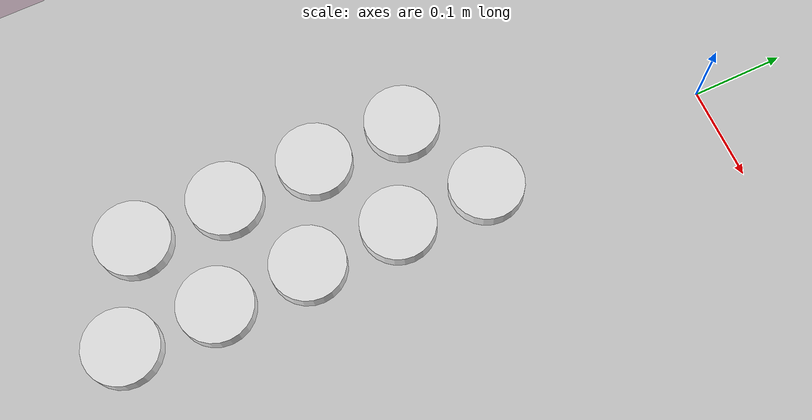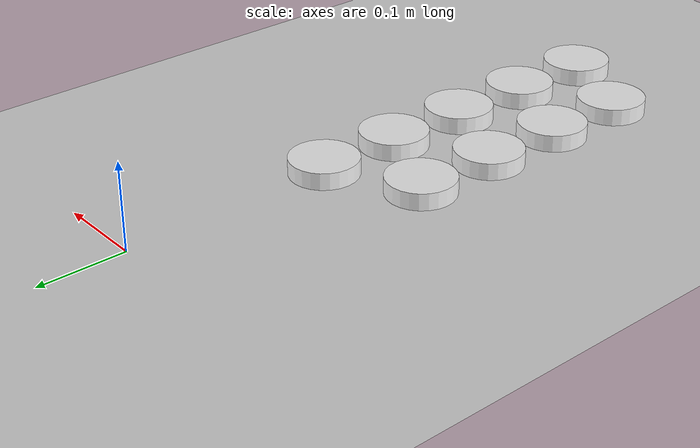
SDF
<sdf version="1.6">
 <world name="default">
  <model name="ground_plane">
   <static>1</static>
   <link name="link">
    <collision name="collision">
     <geometry><plane><normal>0 0 1</normal><size>100 100</size></plane></geometry>
     <surface>
      <contact><collide_bitmask>65535</collide_bitmask></contact>
      <friction><ode><mu>100</mu><mu2>50</mu2></ode></friction>
     </surface>
    </collision>
    <visual name="visual">
     <cast_shadows>0</cast_shadows>
     <geometry><plane><normal>0 0 1</normal><size>100 100</size></plane></geometry>
     <material>
      <script><uri>file://media/materials/scripts/gazebo.material</uri><name>Gazebo/Grey</name></script>
     </material>
    </visual>
   </link>
  </model>
  <model name="white_piece">
   <link name="link">
    <inertial>
     <mass>0.2</mass>
     <inertia>
      <ixx>8.667e-05</ixx>
      <ixy>0</ixy>
      <ixz>0</ixz>
      <iyy>8.667e-05</iyy>
      <iyz>0</iyz>
      <izz>0.00016</izz>
     </inertia>
    </inertial>
    <visual name="visual">
     <geometry><cylinder><radius>0.04</radius><length>0.02</length></cylinder></geometry>
     <material>
      <script><name>Gazebo/White</name><uri>file://media/materials/scripts/gazebo.material</uri></script>
      <shader type="vertex"><normal_map>__default__</normal_map></shader>
     </material>
    </visual>
    <collision name="collision">
     <geometry><cylinder><radius>0.04</radius><length>0.02</length></cylinder></geometry>
     <surface>
      <friction>
       <ode><mu>1</mu><mu2>1</mu2><fdir1>0 0 0</fdir1><slip1>0</slip1><slip2>0</slip2></ode>
       <torsional>
        <coefficient>1</coefficient>
        <patch_radius>0</patch_radius>
        <surface_radius>0</surface_radius>
        <use_patch_radius>1</use_patch_radius>
        <ode><slip>0</slip></ode>
       </torsional>
      </friction>
      <bounce><restitution_coefficient>0</restitution_coefficient><threshold>1e+06</threshold></bounce>
      <contact>
       <collide_without_contact>0</collide_without_contact>
       <collide_without_contact_bitmask>1</collide_without_contact_bitmask>
       <collide_bitmask>1</collide_bitmask>
       <ode>
        <soft_cfm>0</soft_cfm>
        <soft_erp>0.2</soft_erp>
        <kp>1e+13</kp>
        <kd>1</kd>
        <max_vel>1</max_vel>
        <min_depth>0</min_depth>
       </ode>
       <bullet>
        <split_impulse>1</split_impulse>
        <split_impulse_penetration_threshold>-0.01</split_impulse_penetration_threshold>
        <soft_cfm>0</soft_cfm>
        <soft_erp>0.2</soft_erp>
        <kp>1e+13</kp>
        <kd>1</kd>
       </bullet>
      </contact>
     </surface>
    </collision>
   </link>
   <static>0</static>
   <pose>0 -0.25 0.009996 4.8e-05 5.4e-05 0</pose>
  </model>
  <model name="white_piece_0">
   <link name="link">
    <inertial>
     <mass>0.2</mass>
     <inertia>
      <ixx>8.667e-05</ixx>
      <ixy>0</ixy>
      <ixz>0</ixz>
      <iyy>8.667e-05</iyy>
      <iyz>0</iyz>
      <izz>0.00016</izz>
     </inertia>
    </inertial>
    <visual name="visual">
     <geometry><cylinder><radius>0.04</radius><length>0.02</length></cylinder></geometry>
     <material>
      <script><name>Gazebo/White</name><uri>file://media/materials/scripts/gazebo.material</uri></script>
      <shader type="vertex"><normal_map>__default__</normal_map></shader>
     </material>
    </visual>
    <collision name="collision">
     <geometry><cylinder><radius>0.04</radius><length>0.02</length></cylinder></geometry>
     <surface>
      <friction>
       <ode><mu>1</mu><mu2>1</mu2><fdir1>0 0 0</fdir1><slip1>0</slip1><slip2>0</slip2></ode>
       <torsional>
        <coefficient>1</coefficient>
        <patch_radius>0</patch_radius>
        <surface_radius>0</surface_radius>
        <use_patch_radius>1</use_patch_radius>
        <ode><slip>0</slip></ode>
       </torsional>
      </friction>
      <bounce><restitution_coefficient>0</restitution_coefficient><threshold>1e+06</threshold></bounce>
      <contact>
       <collide_without_contact>0</collide_without_contact>
       <collide_without_contact_bitmask>1</collide_without_contact_bitmask>
       <collide_bitmask>1</collide_bitmask>
       <ode>
        <soft_cfm>0</soft_cfm>
        <soft_erp>0.2</soft_erp>
        <kp>1e+13</kp>
        <kd>1</kd>
        <max_vel>1</max_vel>
        <min_depth>0</min_depth>
       </ode>
       <bullet>
        <split_impulse>1</split_impulse>
        <split_impulse_penetration_threshold>-0.01</split_impulse_penetration_threshold>
        <soft_cfm>0</soft_cfm>
        <soft_erp>0.2</soft_erp>
        <kp>1e+13</kp>
        <kd>1</kd>
       </bullet>
      </contact>
     </surface>
    </collision>
   </link>
   <static>0</static>
   <pose>0 -0.35 0.01 0 -0 2e-06</pose>
  </model>
  <model name="white_piece_1">
   <link name="link">
    <inertial>
     <mass>0.2</mass>
     <inertia>
      <ixx>8.667e-05</ixx>
      <ixy>0</ixy>
      <ixz>0</ixz>
      <iyy>8.667e-05</iyy>
      <iyz>0</iyz>
      <izz>0.00016</izz>
     </inertia>
    </inertial>
    <visual name="visual">
     <geometry><cylinder><radius>0.04</radius><length>0.02</length></cylinder></geometry>
     <material>
      <script><name>Gazebo/White</name><uri>file://media/materials/scripts/gazebo.material</uri></script>
      <shader type="vertex"><normal_map>__default__</normal_map></shader>
     </material>
    </visual>
    <collision name="collision">
     <geometry><cylinder><radius>0.04</radius><length>0.02</length></cylinder></geometry>
     <surface>
      <friction>
       <ode><mu>1</mu><mu2>1</mu2><fdir1>0 0 0</fdir1><slip1>0</slip1><slip2>0</slip2></ode>
       <torsional>
        <coefficient>1</coefficient>
        <patch_radius>0</patch_radius>
        <surface_radius>0</surface_radius>
        <use_patch_radius>1</use_patch_radius>
        <ode><slip>0</slip></ode>
       </torsional>
      </friction>
      <bounce><restitution_coefficient>0</restitution_coefficient><threshold>1e+06</threshold></bounce>
      <contact>
       <collide_without_contact>0</collide_without_contact>
       <collide_without_contact_bitmask>1</collide_without_contact_bitmask>
       <collide_bitmask>1</collide_bitmask>
       <ode>
        <soft_cfm>0</soft_cfm>
        <soft_erp>0.2</soft_erp>
        <kp>1e+13</kp>
        <kd>1</kd>
        <max_vel>1</max_vel>
        <min_depth>0</min_depth>
       </ode>
       <bullet>
        <split_impulse>1</split_impulse>
        <split_impulse_penetration_threshold>-0.01</split_impulse_penetration_threshold>
        <soft_cfm>0</soft_cfm>
        <soft_erp>0.2</soft_erp>
        <kp>1e+13</kp>
        <kd>1</kd>
       </bullet>
      </contact>
     </surface>
    </collision>
   </link>
   <static>0</static>
   <pose>0 -0.45 0.009996 -8e-06 -8e-06 2e-06</pose>
  </model>
  <model name="white_piece_2">
   <link name="link">
    <inertial>
     <mass>0.2</mass>
     <inertia>
      <ixx>8.667e-05</ixx>
      <ixy>0</ixy>
      <ixz>0</ixz>
      <iyy>8.667e-05</iyy>
      <iyz>0</iyz>
      <izz>0.00016</izz>
     </inertia>
    </inertial>
    <visual name="visual">
     <geometry><cylinder><radius>0.04</radius><length>0.02</length></cylinder></geometry>
     <material>
      <script><name>Gazebo/White</name><uri>file://media/materials/scripts/gazebo.material</uri></script>
      <shader type="vertex"><normal_map>__default__</normal_map></shader>
     </material>
    </visual>
    <collision name="collision">
     <geometry><cylinder><radius>0.04</radius><length>0.02</length></cylinder></geometry>
     <surface>
      <friction>
       <ode><mu>1</mu><mu2>1</mu2><fdir1>0 0 0</fdir1><slip1>0</slip1><slip2>0</slip2></ode>
       <torsional>
        <coefficient>1</coefficient>
        <patch_radius>0</patch_radius>
        <surface_radius>0</surface_radius>
        <use_patch_radius>1</use_patch_radius>
        <ode><slip>0</slip></ode>
       </torsional>
      </friction>
      <bounce><restitution_coefficient>0</restitution_coefficient><threshold>1e+06</threshold></bounce>
      <contact>
       <collide_without_contact>0</collide_without_contact>
       <collide_without_contact_bitmask>1</collide_without_contact_bitmask>
       <collide_bitmask>1</collide_bitmask>
       <ode>
        <soft_cfm>0</soft_cfm>
        <soft_erp>0.2</soft_erp>
        <kp>1e+13</kp>
        <kd>1</kd>
        <max_vel>1</max_vel>
        <min_depth>0</min_depth>
       </ode>
       <bullet>
        <split_impulse>1</split_impulse>
        <split_impulse_penetration_threshold>-0.01</split_impulse_penetration_threshold>
        <soft_cfm>0</soft_cfm>
        <soft_erp>0.2</soft_erp>
        <kp>1e+13</kp>
        <kd>1</kd>
       </bullet>
      </contact>
     </surface>
    </collision>
   </link>
   <static>0</static>
   <pose>0 -0.55 0.009996 -6.4e-05 -8.2e-05 -2e-06</pose>
  </model>
  <model name="white_piece_3">
   <link name="link">
    <inertial>
     <mass>0.2</mass>
     <inertia>
      <ixx>8.667e-05</ixx>
      <ixy>0</ixy>
      <ixz>0</ixz>
      <iyy>8.667e-05</iyy>
      <iyz>0</iyz>
      <izz>0.00016</izz>
     </inertia>
    </inertial>
    <visual name="visual">
     <geometry><cylinder><radius>0.04</radius><length>0.02</length></cylinder></geometry>
     <material>
      <script><name>Gazebo/White</name><uri>file://media/materials/scripts/gazebo.material</uri></script>
      <shader type="vertex"><normal_map>__default__</normal_map></shader>
     </material>
    </visual>
    <collision name="collision">
     <geometry><cylinder><radius>0.04</radius><length>0.02</length></cylinder></geometry>
     <surface>
      <friction>
       <ode><mu>1</mu><mu2>1</mu2><fdir1>0 0 0</fdir1><slip1>0</slip1><slip2>0</slip2></ode>
       <torsional>
        <coefficient>1</coefficient>
        <patch_radius>0</patch_radius>
        <surface_radius>0</surface_radius>
        <use_patch_radius>1</use_patch_radius>
        <ode><slip>0</slip></ode>
       </torsional>
      </friction>
      <bounce><restitution_coefficient>0</restitution_coefficient><threshold>1e+06</threshold></bounce>
      <contact>
       <collide_without_contact>0</collide_without_contact>
       <collide_without_contact_bitmask>1</collide_without_contact_bitmask>
       <collide_bitmask>1</collide_bitmask>
       <ode>
        <soft_cfm>0</soft_cfm>
        <soft_erp>0.2</soft_erp>
        <kp>1e+13</kp>
        <kd>1</kd>
        <max_vel>1</max_vel>
        <min_depth>0</min_depth>
       </ode>
       <bullet>
        <split_impulse>1</split_impulse>
        <split_impulse_penetration_threshold>-0.01</split_impulse_penetration_threshold>
        <soft_cfm>0</soft_cfm>
        <soft_erp>0.2</soft_erp>
        <kp>1e+13</kp>
        <kd>1</kd>
       </bullet>
      </contact>
     </surface>
    </collision>
   </link>
   <static>0</static>
   <pose>0 -0.65 0.009997 8e-05 8e-05 4e-06</pose>
  </model>
  <model name="white_piece_4">
   <link name="link">
    <inertial>
     <mass>0.2</mass>
     <inertia>
      <ixx>8.667e-05</ixx>
      <ixy>0</ixy>
      <ixz>0</ixz>
      <iyy>8.667e-05</iyy>
      <iyz>0</iyz>
      <izz>0.00016</izz>
     </inertia>
    </inertial>
    <visual name="visual">
     <geometry><cylinder><radius>0.04</radius><length>0.02</length></cylinder></geometry>
     <material>
      <script><name>Gazebo/White</name><uri>file://media/materials/scripts/gazebo.material</uri></script>
      <shader type="vertex"><normal_map>__default__</normal_map></shader>
     </material>
    </visual>
    <collision name="collision">
     <geometry><cylinder><radius>0.04</radius><length>0.02</length></cylinder></geometry>
     <surface>
      <friction>
       <ode><mu>1</mu><mu2>1</mu2><fdir1>0 0 0</fdir1><slip1>0</slip1><slip2>0</slip2></ode>
       <torsional>
        <coefficient>1</coefficient>
        <patch_radius>0</patch_radius>
        <surface_radius>0</surface_radius>
        <use_patch_radius>1</use_patch_radius>
        <ode><slip>0</slip></ode>
       </torsional>
      </friction>
      <bounce><restitution_coefficient>0</restitution_coefficient><threshold>1e+06</threshold></bounce>
      <contact>
       <collide_without_contact>0</collide_without_contact>
       <collide_without_contact_bitmask>1</collide_without_contact_bitmask>
       <collide_bitmask>1</collide_bitmask>
       <ode>
        <soft_cfm>0</soft_cfm>
        <soft_erp>0.2</soft_erp>
        <kp>1e+13</kp>
        <kd>1</kd>
        <max_vel>1</max_vel>
        <min_depth>0</min_depth>
       </ode>
       <bullet>
        <split_impulse>1</split_impulse>
        <split_impulse_penetration_threshold>-0.01</split_impulse_penetration_threshold>
        <soft_cfm>0</soft_cfm>
        <soft_erp>0.2</soft_erp>
        <kp>1e+13</kp>
        <kd>1</kd>
       </bullet>
      </contact>
     </surface>
    </collision>
   </link>
   <static>0</static>
   <pose>-0.1 -0.5 0.009994 -3.6e-05 -3.8e-05 2e-06</pose>
  </model>
  <model name="white_piece_5">
   <link name="link">
    <inertial>
     <mass>0.2</mass>
     <inertia>
      <ixx>8.667e-05</ixx>
      <ixy>0</ixy>
      <ixz>0</ixz>
      <iyy>8.667e-05</iyy>
      <iyz>0</iyz>
      <izz>0.00016</izz>
     </inertia>
    </inertial>
    <visual name="visual">
     <geometry><cylinder><radius>0.04</radius><length>0.02</length></cylinder></geometry>
     <material>
      <script><name>Gazebo/White</name><uri>file://media/materials/scripts/gazebo.material</uri></script>
      <shader type="vertex"><normal_map>__default__</normal_map></shader>
     </material>
    </visual>
    <collision name="collision">
     <geometry><cylinder><radius>0.04</radius><length>0.02</length></cylinder></geometry>
     <surface>
      <friction>
       <ode><mu>1</mu><mu2>1</mu2><fdir1>0 0 0</fdir1><slip1>0</slip1><slip2>0</slip2></ode>
       <torsional>
        <coefficient>1</coefficient>
        <patch_radius>0</patch_radius>
        <surface_radius>0</surface_radius>
        <use_patch_radius>1</use_patch_radius>
        <ode><slip>0</slip></ode>
       </torsional>
      </friction>
      <bounce><restitution_coefficient>0</restitution_coefficient><threshold>1e+06</threshold></bounce>
      <contact>
       <collide_without_contact>0</collide_without_contact>
       <collide_without_contact_bitmask>1</collide_without_contact_bitmask>
       <collide_bitmask>1</collide_bitmask>
       <ode>
        <soft_cfm>0</soft_cfm>
        <soft_erp>0.2</soft_erp>
        <kp>1e+13</kp>
        <kd>1</kd>
        <max_vel>1</max_vel>
        <min_depth>0</min_depth>
       </ode>
       <bullet>
        <split_impulse>1</split_impulse>
        <split_impulse_penetration_threshold>-0.01</split_impulse_penetration_threshold>
        <soft_cfm>0</soft_cfm>
        <soft_erp>0.2</soft_erp>
        <kp>1e+13</kp>
        <kd>1</kd>
       </bullet>
      </contact>
     </surface>
    </collision>
   </link>
   <static>0</static>
   <pose>-0.1 -0.6 0.01 0 -0 4e-06</pose>
  </model>
  <model name="white_piece_6">
   <link name="link">
    <inertial>
     <mass>0.2</mass>
     <inertia>
      <ixx>8.667e-05</ixx>
      <ixy>0</ixy>
      <ixz>0</ixz>
      <iyy>8.667e-05</iyy>
      <iyz>0</iyz>
      <izz>0.00016</izz>
     </inertia>
    </inertial>
    <visual name="visual">
     <geometry><cylinder><radius>0.04</radius><length>0.02</length></cylinder></geometry>
     <material>
      <script><name>Gazebo/White</name><uri>file://media/materials/scripts/gazebo.material</uri></script>
      <shader type="vertex"><normal_map>__default__</normal_map></shader>
     </material>
    </visual>
    <collision name="collision">
     <geometry><cylinder><radius>0.04</radius><length>0.02</length></cylinder></geometry>
     <surface>
      <friction>
       <ode><mu>1</mu><mu2>1</mu2><fdir1>0 0 0</fdir1><slip1>0</slip1><slip2>0</slip2></ode>
       <torsional>
        <coefficient>1</coefficient>
        <patch_radius>0</patch_radius>
        <surface_radius>0</surface_radius>
        <use_patch_radius>1</use_patch_radius>
        <ode><slip>0</slip></ode>
       </torsional>
      </friction>
      <bounce><restitution_coefficient>0</restitution_coefficient><threshold>1e+06</threshold></bounce>
      <contact>
       <collide_without_contact>0</collide_without_contact>
       <collide_without_contact_bitmask>1</collide_without_contact_bitmask>
       <collide_bitmask>1</collide_bitmask>
       <ode>
        <soft_cfm>0</soft_cfm>
        <soft_erp>0.2</soft_erp>
        <kp>1e+13</kp>
        <kd>1</kd>
        <max_vel>1</max_vel>
        <min_depth>0</min_depth>
       </ode>
       <bullet>
        <split_impulse>1</split_impulse>
        <split_impulse_penetration_threshold>-0.01</split_impulse_penetration_threshold>
        <soft_cfm>0</soft_cfm>
        <soft_erp>0.2</soft_erp>
        <kp>1e+13</kp>
        <kd>1</kd>
       </bullet>
      </contact>
     </surface>
    </collision>
   </link>
   <static>0</static>
   <pose>-0.1 -0.4 0.01 0 -0 2e-06</pose>
  </model>
  <model name="white_piece_7">
   <link name="link">
    <inertial>
     <mass>0.2</mass>
     <inertia>
      <ixx>8.667e-05</ixx>
      <ixy>0</ixy>
      <ixz>0</ixz>
      <iyy>8.667e-05</iyy>
      <iyz>0</iyz>
      <izz>0.00016</izz>
     </inertia>
    </inertial>
    <visual name="visual">
     <geometry><cylinder><radius>0.04</radius><length>0.02</length></cylinder></geometry>
     <material>
      <script><name>Gazebo/White</name><uri>file://media/materials/scripts/gazebo.material</uri></script>
      <shader type="vertex"><normal_map>__default__</normal_map></shader>
     </material>
    </visual>
    <collision name="collision">
     <geometry><cylinder><radius>0.04</radius><length>0.02</length></cylinder></geometry>
     <surface>
      <friction>
       <ode><mu>1</mu><mu2>1</mu2><fdir1>0 0 0</fdir1><slip1>0</slip1><slip2>0</slip2></ode>
       <torsional>
        <coefficient>1</coefficient>
        <patch_radius>0</patch_radius>
        <surface_radius>0</surface_radius>
        <use_patch_radius>1</use_patch_radius>
        <ode><slip>0</slip></ode>
       </torsional>
      </friction>
      <bounce><restitution_coefficient>0</restitution_coefficient><threshold>1e+06</threshold></bounce>
      <contact>
       <collide_without_contact>0</collide_without_contact>
       <collide_without_contact_bitmask>1</collide_without_contact_bitmask>
       <collide_bitmask>1</collide_bitmask>
       <ode>
        <soft_cfm>0</soft_cfm>
        <soft_erp>0.2</soft_erp>
        <kp>1e+13</kp>
        <kd>1</kd>
        <max_vel>1</max_vel>
        <min_depth>0</min_depth>
       </ode>
       <bullet>
        <split_impulse>1</split_impulse>
        <split_impulse_penetration_threshold>-0.01</split_impulse_penetration_threshold>
        <soft_cfm>0</soft_cfm>
        <soft_erp>0.2</soft_erp>
        <kp>1e+13</kp>
        <kd>1</kd>
       </bullet>
      </contact>
     </surface>
    </collision>
   </link>
   <static>0</static>
   <pose>-0.1 -0.3 0.009995 -0.000104 -0.000104 2e-06</pose>
  </model>
 </world>
</sdf>
